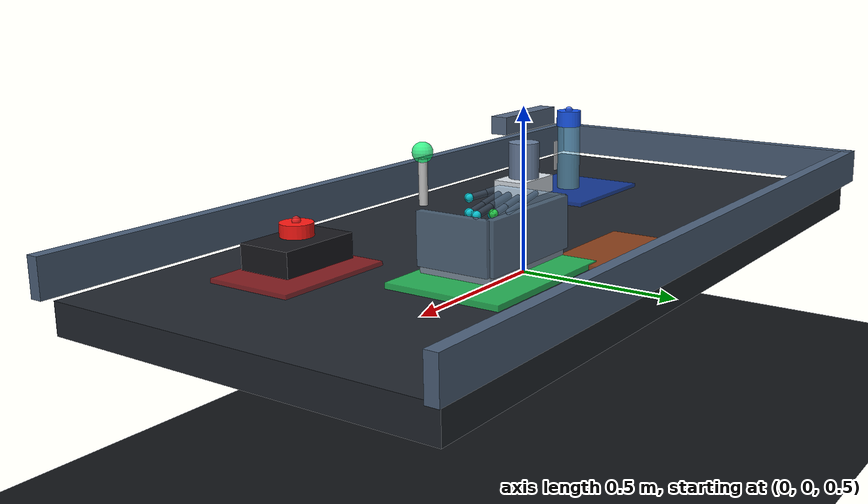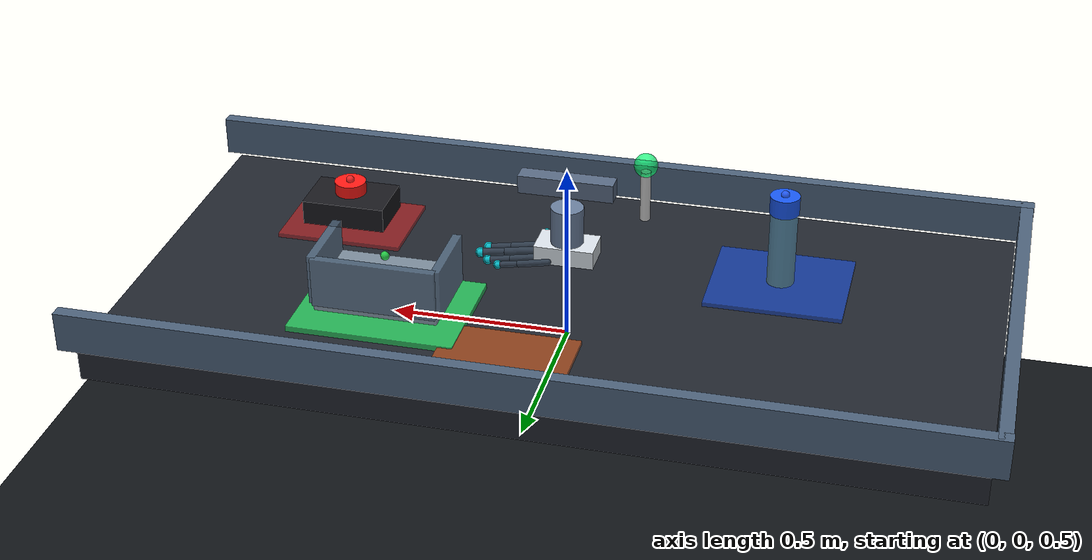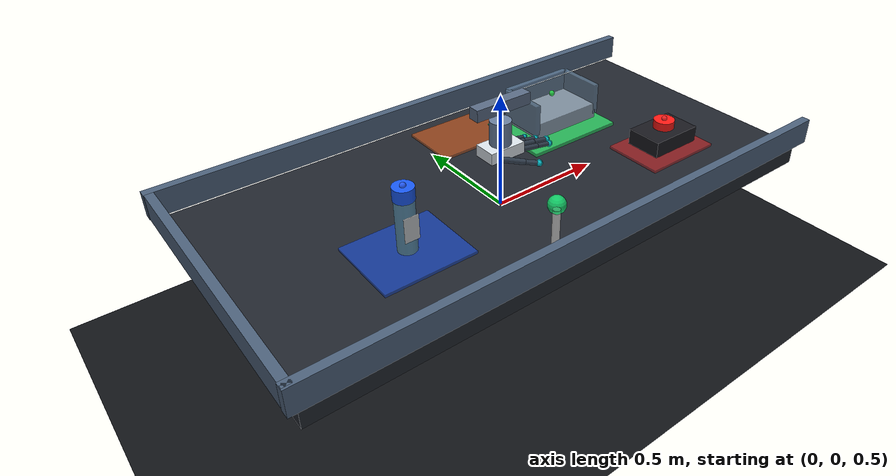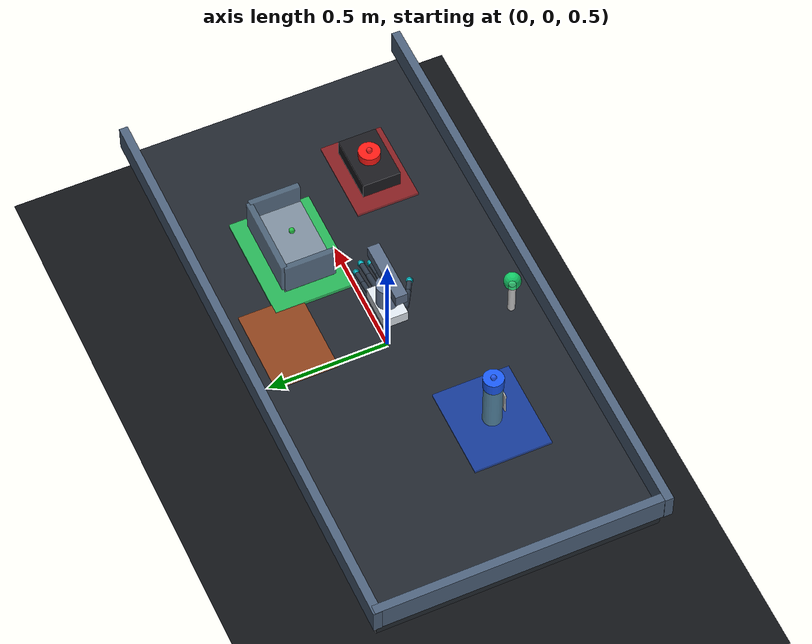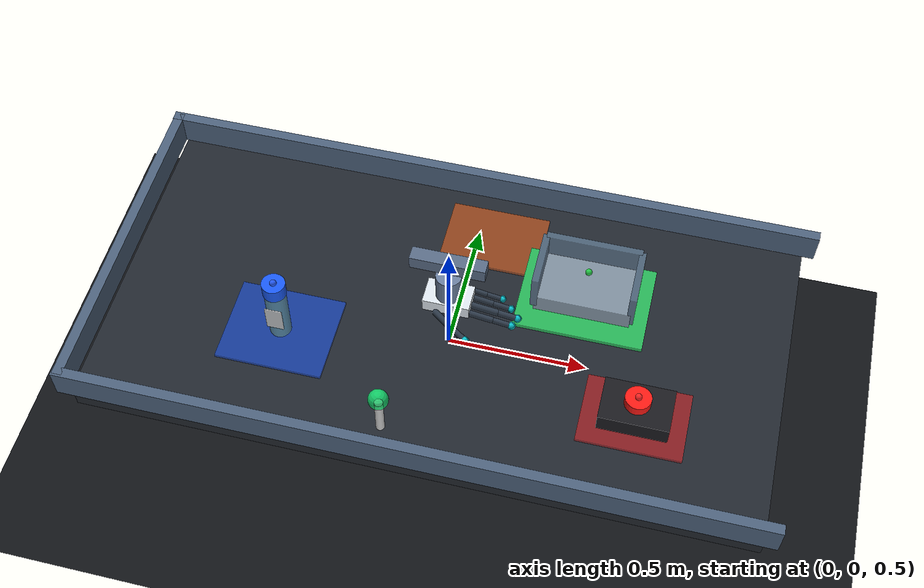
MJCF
<mujoco model="dexterous_triage_lab">
  <compiler angle="degree" autolimits="true"/>
  <option timestep="0.004" gravity="0 0 -9.81" integrator="RK4"/>

  <visual>
    <global offwidth="1280" offheight="720"/>
    <rgba haze="0.05 0.06 0.08 1"/>
    <quality shadowsize="4096"/>
    <map znear="0.01" zfar="20"/>
  </visual>

  <asset>
    <texture name="floor_grid" type="2d" builtin="checker" width="512" height="512"
      rgb1="0.04 0.05 0.06" rgb2="0.09 0.10 0.12"/>
    <material name="floor_mat" texture="floor_grid" texrepeat="7 5" reflectance="0.08"/>
    <material name="table_mat" rgba="0.13 0.15 0.18 1"/>
    <material name="rail_mat" rgba="0.30 0.38 0.48 1"/>
    <material name="hand_mat" rgba="0.86 0.89 0.92 1"/>
    <material name="finger_mat" rgba="0.18 0.23 0.29 1"/>
    <material name="pad_mat" rgba="0.05 0.08 0.10 1"/>
    <material name="warning_mat" rgba="1.00 0.56 0.10 1"/>
    <material name="target_mat" rgba="0.20 0.95 0.44 0.72"/>
    <material name="danger_mat" rgba="1.00 0.10 0.08 1"/>
    <material name="vial_mat" rgba="0.48 0.82 1.00 0.55"/>
    <material name="cap_mat" rgba="0.10 0.35 0.95 1"/>
    <material name="pod_mat" rgba="0.82 0.92 1.00 0.55"/>
  </asset>

  <default>
    <geom contype="1" conaffinity="1" friction="1.2 0.04 0.002" solref="0.01 1" solimp="0.9 0.95 0.001"/>
    <joint damping="1.2" armature="0.01"/>
    <site size="0.012" rgba="1 1 1 0.55"/>
  </default>

  <worldbody>
    <geom name="floor" type="plane" size="5 4 0.05" material="floor_mat"/>
    <geom name="work_table" type="box" pos="0 0 0.58" size="1.18 0.58 0.045" material="table_mat"/>
    <geom name="left_rail" type="box" pos="0 0.59 0.69" size="1.22 0.018 0.055" material="rail_mat"/>
    <geom name="right_rail" type="box" pos="0 -0.59 0.69" size="1.22 0.018 0.055" material="rail_mat"/>
    <geom name="rear_rail" type="box" pos="-1.20 0 0.69" size="0.018 0.60 0.055" material="rail_mat"/>

    <geom name="scan_zone" type="box" pos="-0.56 -0.18 0.632" size="0.19 0.16 0.006" rgba="0.08 0.32 0.95 0.55"/>
    <geom name="sterile_pod_zone" type="box" pos="0.45 0.20 0.636" size="0.23 0.17 0.008" material="target_mat"/>
    <geom name="discard_zone" type="box" pos="0.08 0.38 0.634" size="0.18 0.13 0.006" rgba="1.00 0.40 0.08 0.50"/>
    <geom name="audit_zone" type="box" pos="0.70 -0.24 0.634" size="0.18 0.13 0.006" rgba="0.94 0.12 0.12 0.50"/>

    <body name="sterile_pod" pos="0.45 0.20 0.70">
      <geom name="pod_base" type="box" size="0.17 0.105 0.035" material="pod_mat"/>
      <geom name="pod_back" type="box" pos="0.00 0.105 0.055" size="0.17 0.012 0.070" rgba="0.62 0.82 1.00 0.35"/>
      <geom name="pod_left" type="box" pos="-0.17 0.00 0.055" size="0.012 0.105 0.070" rgba="0.62 0.82 1.00 0.35"/>
      <geom name="pod_right" type="box" pos="0.17 0.00 0.055" size="0.012 0.105 0.070" rgba="0.62 0.82 1.00 0.35"/>
      <site name="pod_goal_site" pos="0 0 0.095" rgba="0.2 1 0.35 0.8"/>
    </body>

    <body name="button_housing" pos="0.70 -0.24 0.69">
      <geom name="button_base" type="box" size="0.12 0.08 0.035" rgba="0.10 0.10 0.12 1"/>
      <body name="confirm_button" pos="0 0 0.058">
        <joint name="button_slide" type="slide" axis="0 0 1" range="-0.034 0.000" damping="4"/>
        <geom name="button_cap" type="cylinder" size="0.045 0.018" material="danger_mat"/>
        <site name="button_site" pos="0 0 0.022" rgba="1 0.2 0.2 0.8"/>
      </body>
    </body>

    <body name="fragile_vial" pos="-0.56 -0.18 0.75">
      <joint name="vial_free" type="free"/>
      <geom name="vial_glass" type="cylinder" size="0.038 0.110" material="vial_mat" mass="0.08"/>
      <geom name="vial_label" type="box" pos="0 -0.039 0" size="0.030 0.002 0.050" rgba="1 1 1 0.72" contype="0" conaffinity="0"/>
      <site name="vial_grasp_site" pos="0 0 0" rgba="0.4 0.9 1 0.8"/>
    </body>

    <body name="vial_cap" pos="-0.56 -0.18 0.88">
      <joint name="cap_free" type="free"/>
      <geom name="blue_cap" type="cylinder" size="0.041 0.026" material="cap_mat" mass="0.03"/>
      <site name="cap_site" pos="0 0 0.028" rgba="0.2 0.4 1 0.8"/>
    </body>

    <body name="confidence_beacon" pos="-0.12 -0.47 0.70">
      <geom name="beacon_stem" type="cylinder" size="0.015 0.08" rgba="0.8 0.8 0.8 1"/>
      <geom name="beacon_light" type="sphere" pos="0 0 0.10" size="0.035" rgba="0.1 1 0.5 0.8"/>
    </body>

    <body name="triage_rig" pos="0 0 0.78">
      <joint name="base_x" type="slide" axis="1 0 0" range="-0.95 0.95" damping="18"/>
      <joint name="base_y" type="slide" axis="0 1 0" range="-0.48 0.48" damping="18"/>
      <joint name="lift_z" type="slide" axis="0 0 1" range="-0.12 0.23" damping="14"/>
      <geom name="gantry_crossbar" type="box" pos="0 0 0.18" size="0.13 0.025 0.025" rgba="0.35 0.42 0.52 1" contype="0" conaffinity="0"/>

      <body name="wrist" pos="0 0 0.06">
        <joint name="wrist_yaw" type="hinge" axis="0 0 1" range="-95 95" damping="3"/>
        <joint name="wrist_pitch" type="hinge" axis="0 1 0" range="-55 55" damping="3"/>
        <joint name="wrist_roll" type="hinge" axis="1 0 0" range="-160 160" damping="3"/>
        <geom name="wrist_shell" type="cylinder" size="0.045 0.055" rgba="0.42 0.50 0.62 1"/>

        <body name="palm" pos="0 0 -0.075">
          <geom name="palm_plate" type="box" size="0.082 0.050 0.025" material="hand_mat"/>
          <site name="palm_center" pos="0 0 -0.018" rgba="1 1 1 0.75"/>

          <body name="index_base" pos="0.055 -0.034 -0.012">
            <joint name="index_abd" type="hinge" axis="0 0 1" range="-32 32"/>
            <joint name="index_flex" type="hinge" axis="0 1 0" range="-8 92"/>
            <geom name="index_prox" type="capsule" fromto="0 0 0 0.105 0 -0.018" size="0.011" material="finger_mat"/>
            <body name="index_tip_body" pos="0.105 0 -0.018">
              <joint name="index_tip" type="hinge" axis="0 1 0" range="0 92"/>
              <geom name="index_dist" type="capsule" fromto="0 0 0 0.070 0 -0.012" size="0.010" material="finger_mat"/>
              <site name="index_pad_site" pos="0.070 0 -0.012" size="0.014" rgba="0.05 0.95 1 0.8"/>
            </body>
          </body>

          <body name="middle_base" pos="0.058 0.000 -0.012">
            <joint name="middle_abd" type="hinge" axis="0 0 1" range="-24 24"/>
            <joint name="middle_flex" type="hinge" axis="0 1 0" range="-8 96"/>
            <geom name="middle_prox" type="capsule" fromto="0 0 0 0.112 0 -0.018" size="0.012" material="finger_mat"/>
            <body name="middle_tip_body" pos="0.112 0 -0.018">
              <joint name="middle_tip" type="hinge" axis="0 1 0" range="0 94"/>
              <geom name="middle_dist" type="capsule" fromto="0 0 0 0.074 0 -0.012" size="0.011" material="finger_mat"/>
              <site name="middle_pad_site" pos="0.074 0 -0.012" size="0.014" rgba="0.05 0.95 1 0.8"/>
            </body>
          </body>

          <body name="ring_base" pos="0.052 0.034 -0.012">
            <joint name="ring_abd" type="hinge" axis="0 0 1" range="-28 28"/>
            <joint name="ring_flex" type="hinge" axis="0 1 0" range="-8 90"/>
            <geom name="ring_prox" type="capsule" fromto="0 0 0 0.096 0 -0.018" size="0.010" material="finger_mat"/>
            <body name="ring_tip_body" pos="0.096 0 -0.018">
              <joint name="ring_tip" type="hinge" axis="0 1 0" range="0 88"/>
              <geom name="ring_dist" type="capsule" fromto="0 0 0 0.066 0 -0.012" size="0.0095" material="finger_mat"/>
              <site name="ring_pad_site" pos="0.066 0 -0.012" size="0.013" rgba="0.05 0.95 1 0.8"/>
            </body>
          </body>

          <body name="little_base" pos="0.038 0.064 -0.010">
            <joint name="little_abd" type="hinge" axis="0 0 1" range="-28 28"/>
            <joint name="little_flex" type="hinge" axis="0 1 0" range="-8 86"/>
            <geom name="little_prox" type="capsule" fromto="0 0 0 0.082 0 -0.016" size="0.009" material="finger_mat"/>
            <body name="little_tip_body" pos="0.082 0 -0.016">
              <joint name="little_tip" type="hinge" axis="0 1 0" range="0 82"/>
              <geom name="little_dist" type="capsule" fromto="0 0 0 0.058 0 -0.010" size="0.0085" material="finger_mat"/>
              <site name="little_pad_site" pos="0.058 0 -0.010" size="0.012" rgba="0.05 0.95 1 0.8"/>
            </body>
          </body>

          <body name="thumb_base" pos="-0.030 -0.064 -0.010" euler="0 0 -38">
            <joint name="thumb_opp" type="hinge" axis="0 0 1" range="-35 75"/>
            <joint name="thumb_flex" type="hinge" axis="0 1 0" range="-12 88"/>
            <geom name="thumb_prox" type="capsule" fromto="0 0 0 0.078 0.010 -0.016" size="0.012" material="finger_mat"/>
            <body name="thumb_tip_body" pos="0.078 0.010 -0.016">
              <joint name="thumb_tip" type="hinge" axis="0 1 0" range="0 86"/>
              <geom name="thumb_dist" type="capsule" fromto="0 0 0 0.060 0.008 -0.010" size="0.0105" material="finger_mat"/>
              <site name="thumb_pad_site" pos="0.060 0.008 -0.010" size="0.014" rgba="0.05 0.95 1 0.8"/>
            </body>
          </body>
        </body>
      </body>
    </body>

    <light name="key" pos="0 -2.4 3.2" dir="0 0.55 -1" diffuse="1 1 1"/>
    <light name="rim" pos="-2 1.8 2.2" dir="0.7 -0.5 -1" diffuse="0.55 0.65 0.8"/>
    <camera name="overview_camera" pos="1.55 -1.75 1.55" xyaxes="0.76 0.65 0 -0.34 0.39 0.86"/>
  </worldbody>

  <actuator>
    <position name="base_x_servo" joint="base_x" kp="420" ctrlrange="-0.95 0.95" ctrllimited="true"/>
    <position name="base_y_servo" joint="base_y" kp="420" ctrlrange="-0.48 0.48" ctrllimited="true"/>
    <position name="lift_z_servo" joint="lift_z" kp="360" ctrlrange="-0.12 0.23" ctrllimited="true"/>
    <position name="wrist_yaw_servo" joint="wrist_yaw" kp="120" ctrlrange="-1.65 1.65" ctrllimited="true"/>
    <position name="wrist_pitch_servo" joint="wrist_pitch" kp="100" ctrlrange="-0.95 0.95" ctrllimited="true"/>
    <position name="wrist_roll_servo" joint="wrist_roll" kp="100" ctrlrange="-2.79 2.79" ctrllimited="true"/>
    <position name="index_abd_servo" joint="index_abd" kp="55"/>
    <position name="index_flex_servo" joint="index_flex" kp="70"/>
    <position name="index_tip_servo" joint="index_tip" kp="55"/>
    <position name="middle_abd_servo" joint="middle_abd" kp="55"/>
    <position name="middle_flex_servo" joint="middle_flex" kp="70"/>
    <position name="middle_tip_servo" joint="middle_tip" kp="55"/>
    <position name="ring_abd_servo" joint="ring_abd" kp="55"/>
    <position name="ring_flex_servo" joint="ring_flex" kp="70"/>
    <position name="ring_tip_servo" joint="ring_tip" kp="55"/>
    <position name="little_abd_servo" joint="little_abd" kp="55"/>
    <position name="little_flex_servo" joint="little_flex" kp="68"/>
    <position name="little_tip_servo" joint="little_tip" kp="52"/>
    <position name="thumb_opp_servo" joint="thumb_opp" kp="70"/>
    <position name="thumb_flex_servo" joint="thumb_flex" kp="70"/>
    <position name="thumb_tip_servo" joint="thumb_tip" kp="55"/>
    <position name="button_servo" joint="button_slide" kp="100"/>
  </actuator>

  <sensor>
    <framepos name="palm_position" objtype="site" objname="palm_center"/>
    <framepos name="vial_position" objtype="site" objname="vial_grasp_site"/>
    <framepos name="pod_goal_position" objtype="site" objname="pod_goal_site"/>
    <jointpos name="wrist_roll_position" joint="wrist_roll"/>
    <jointvel name="wrist_roll_velocity" joint="wrist_roll"/>
    <jointpos name="button_position" joint="button_slide"/>
    <touch name="index_touch" site="index_pad_site"/>
    <touch name="middle_touch" site="middle_pad_site"/>
    <touch name="ring_touch" site="ring_pad_site"/>
    <touch name="little_touch" site="little_pad_site"/>
    <touch name="thumb_touch" site="thumb_pad_site"/>
  </sensor>
</mujoco>
